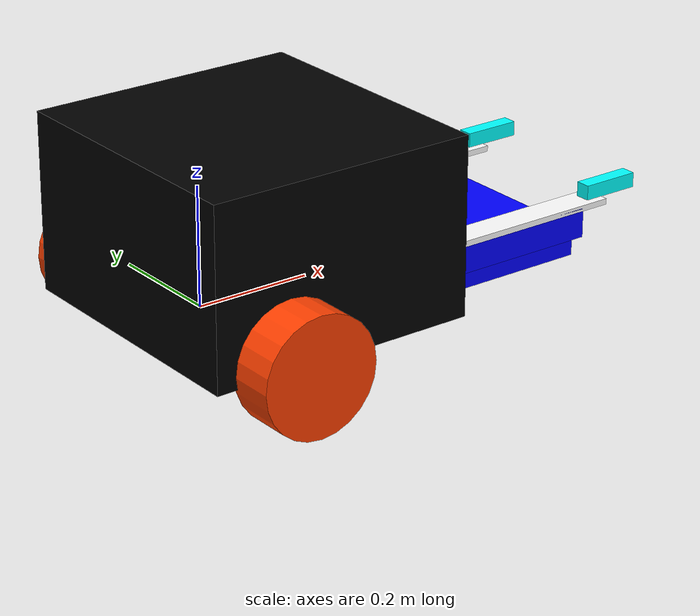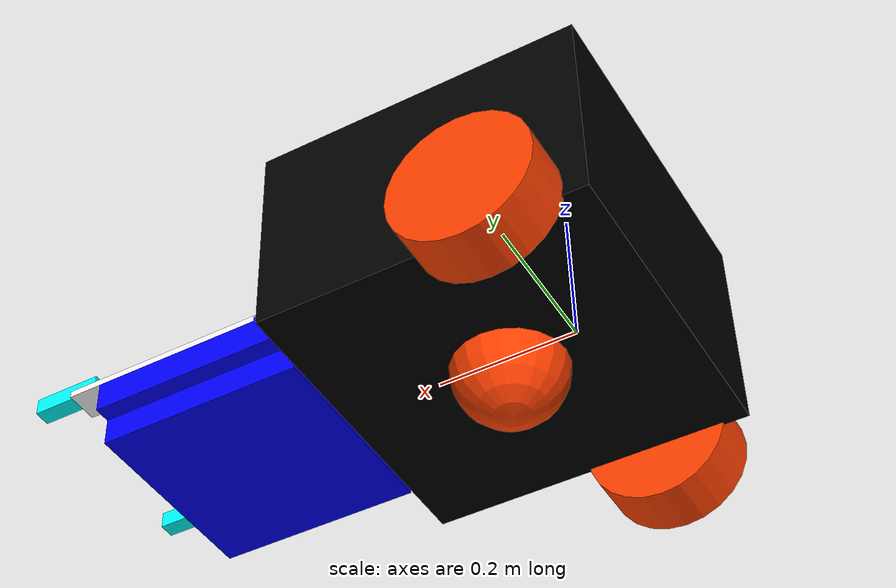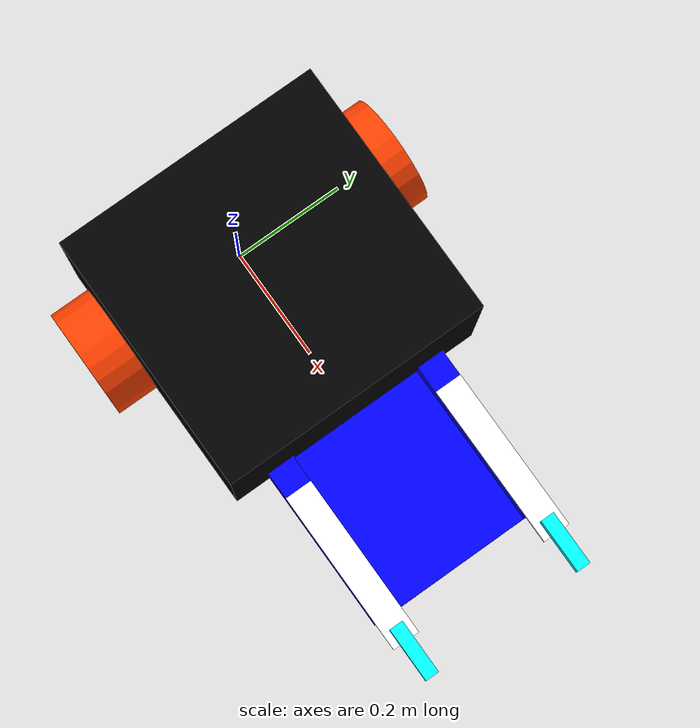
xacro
<?xml version="1.0"?>
<robot xmlns:xacro="http://www.ros.org/wiki/xacro">

    <xacro:include filename = "inertial_macros.xacro" />

    <xacro:property name="chassis_length"           value="0.464"/>
    <xacro:property name="chassis_width"            value="0.48"/>
    <xacro:property name="chassis_height"           value="0.3"/>
    <xacro:property name="chassis_mass"             value="0.700"/>

    <xacro:property name="wheel_radius"             value="0.1"/>
    <xacro:property name="wheel_thickness"          value="0.08"/>
    <xacro:property name="wheel_mass"               value="0.050"/>
    <xacro:property name="wheel_offset_x"           value="0.133"/>
    <xacro:property name="wheel_offset_y"           value="0.275"/>
    <xacro:property name="wheel_offset_z"           value="0.020"/>

    <xacro:property name="caster_wheel_radius"      value="${wheel_radius - wheel_offset_z}"/>
    <xacro:property name="caster_wheel_mass"        value="0.010"/>
    <xacro:property name="caster_wheel_offset_x"    value="0.230"/>
    <xacro:property name="caster_wheel_offset_z"    value="${wheel_offset_z - wheel_radius + caster_wheel_radius}"/>

    <!-- Colors -->
    <material name="white">
        <color rgba= "1 1 1 1"/>
    </material>

    <material name="black">
        <color rgba= "0 0 0 1"/>
    </material>

    <material name= "orange">
        <color rgba= "1 0.25 0 1"/>
    </material>

    <material name="cyan">
        <color rgba= "0 1 1 1"/>
    </material>

    <material name="indigo">
        <color rgba= "0.294 0 0.51 1"/>
    </material>

    <material name="blue">
        <color rgba= "0 0 1 1"/>
    </material>

    <!-- convention (except base_link): joint followed by link -->
    <!-- base_link -->
    <link name="base_link">
    </link>

    <!-- base_footprint -->
    <joint name="base_footprint_joint" type="fixed">
        <parent link= "base_link"/>
        <child link= "base_footprint"/>
        <origin xyz= "0 0 0" rpy= "0 0 0"/>
    </joint>

    <link name="base_footprint">
    </link>

    <!-- chasis -->
    <joint name="chasis_joint" type="fixed">
        <parent link= "base_link"/>
        <child link= "chasis"/>
        <origin xyz= "${-wheel_offset_x} 0 ${-wheel_offset_z}"/>
    </joint>

    <link name="chasis">
        <visual>
            <origin xyz= "${chassis_length/2} 0 ${chassis_height/2}" rpy= "0 0 0"/>
            <geometry>
                <box size = "${chassis_length} ${chassis_width} ${chassis_height}"/>
            </geometry>
            <material name= "black"/>
        </visual>
        <collision>
            <origin xyz= "${chassis_length/2} 0 ${chassis_height/2}" rpy= "0 0 0"/>
            <geometry>
                <box size = "${chassis_length} ${chassis_width} ${chassis_height}"/>
            </geometry>
        </collision>
        <xacro:inertial_box mass= "0.5" x="${chassis_length}" y="${chassis_width}" z="${chassis_height}">
            <origin xyz= "${chassis_length/2} 0 ${chassis_height/2}" rpy= "0 0 0"/>
        </xacro:inertial_box>
    </link>

    <gazebo reference="chasis">
        <material>Gazebo/Black</material>
    </gazebo>

    <!-- left_wheel -->
    <joint name="left_wheel_joint" type="continuous">
        <parent link= "base_link"/>
        <child link= "left_wheel"/>
        <origin xyz= "0 ${wheel_offset_y} 0" rpy = "${pi/2} 0 0"/>
        <axis xyz= "0 0 -1"/>
    </joint>

    <link name="left_wheel">
        <visual>
            <geometry>
                <cylinder radius = "${wheel_radius}" length= "${wheel_thickness}"/>
            </geometry>
            <material name= "orange"/>
        </visual>
        <collision>
            <geometry>
                <sphere radius = "${wheel_radius}" />
            </geometry>
        </collision>
        <xacro:inertial_cylinder mass = "${wheel_mass}" radius= "${wheel_radius}" length= "${wheel_thickness}">
            <origin xyz= "0 0 0" rpy= "0 0 0"/>
        </xacro:inertial_cylinder>
    </link>

    <gazebo reference="left_wheel">
        <material>Gazebo/Orange</material>
    </gazebo>

    <!-- right_wheel -->
    <joint name="right_wheel_joint" type="continuous">
        <parent link= "base_link"/>
        <child link= "right_wheel"/>
        <origin xyz= "0 ${-wheel_offset_y} 0" rpy = "${pi/2} 0 0"/>
        <axis xyz= "0 0 -1"/>
    </joint>

    <link name="right_wheel">
        <visual>
            <geometry>
                <cylinder radius = "${wheel_radius}" length= "${wheel_thickness}"/>
            </geometry>
            <material name= "orange"/>
        </visual>
        <collision>
            <geometry>
                <sphere radius = "${wheel_radius}" />
            </geometry>
        </collision>
        <xacro:inertial_cylinder mass = "${wheel_mass}" radius= "${wheel_radius}" length= "${wheel_thickness}">
            <origin xyz= "0 0 0" rpy= "0 0 0"/>
        </xacro:inertial_cylinder>
    </link>

    <gazebo reference="right_wheel">
        <material>Gazebo/Orange</material>
    </gazebo>

    <!-- caster_wheel -->
    <joint name="caster_wheel_joint" type="fixed">
        <parent link= "chasis"/>
        <child link= "caster_wheel"/>
        <origin xyz= "${caster_wheel_offset_x} 0 0"/>
    </joint>

    <link name="caster_wheel">
        <visual>
            <geometry>
                <sphere radius = "${caster_wheel_radius}"/>
            </geometry>
            <material name= "orange"/>
        </visual>
        <collision>
            <geometry>
                <sphere radius = "${caster_wheel_radius}"/>
            </geometry>
        </collision>
        <xacro:inertial_sphere mass= "${caster_wheel_mass}" radius= "${caster_wheel_radius}">
            <origin xyz= "0 0 0" rpy= "0 0 0"/>
        </xacro:inertial_sphere>
    </link>

    <gazebo reference="caster_wheel">
        <material>Gazebo/Orange</material>
        <mu1 value= "0.0001"/>
        <mu2 value= "0.0001"/>
    </gazebo>

    <!--Platform-->
    <joint name="platform_joint" type="prismatic">
        <parent link= "chasis"/>
        <child link= "platform"/>
        <origin xyz= "${chassis_length+0.15} 0 ${wheel_offset_z}" rpy= "0 0 0"/>
        <axis xyz= "0 0 1"/>
        <limit lower="0" upper="1" effort="10" velocity="0.1"/>
    </joint>
    <link name="platform">
        <visual>
            <origin xyz= "0 0 0" rpy= "0 0 0"/>
            <geometry>
                <box size = "0.3 0.3 0.05"/>
            </geometry>
            <material name= "blue"/>
        </visual>
        <collision>
            <origin xyz= "0 0 0" rpy= "0 0 0"/>
            <geometry>
                <box size = "0.3 0.3 0.05"/>
            </geometry>
        </collision>
        <xacro:inertial_box mass= "0.5" x="0.1" y="0.1" z="0.1">
            <origin xyz= "0 0 0" rpy= "0 0 0"/>
        </xacro:inertial_box>
    </link>

    <!--Extender Left Arm-->
    <joint name="extender_left_arm_joint" type="fixed">
        <parent link= "platform"/>
        <child link= "extender_left_arm"/>
        <origin xyz= "0 0.15 ${wheel_offset_z+0.02}" rpy= "0 0 0"/>
    </joint>
    <link name="extender_left_arm">
        <visual>
            <origin xyz= "0 0 0" rpy= "0 0 0"/>
            <geometry>
                <box size = "0.3 0.05 0.05"/>
            </geometry>
            <material name= "blue"/>
        </visual>
        <collision>
            <origin xyz= "0 0 0" rpy= "0 0 0"/>
            <geometry>
                <box size = "0.3 0.05 0.05"/>
            </geometry>
        </collision>
        <xacro:inertial_box mass= "0.5" x="0.1" y="0.1" z="0.1">
            <origin xyz= "0 0 0" rpy= "0 0 0"/>
        </xacro:inertial_box>

    </link>

    <!--Extender Right Arm-->
    <joint name="extender_right_arm_joint" type="fixed">
        <parent link= "platform"/>
        <child link= "extender_right_arm"/>
        <origin xyz= "0 -0.15 ${wheel_offset_z+0.02}" rpy= "0 0 0"/>

    </joint>
    <link name="extender_right_arm">
        <visual>
            <origin xyz= "0 0 0" rpy= "0 0 0"/>
            <geometry>
                <box size = "0.3 0.05 0.05"/>
            </geometry>
            <material name= "blue"/>
        </visual>
        <collision>
            <origin xyz= "0 0 0" rpy= "0 0 0"/>
            <geometry>
                <box size = "0.3 0.05 0.05"/>
            </geometry>
        </collision>
        <xacro:inertial_box mass= "0.5" x="0.1" y="0.1" z="0.1">
            <origin xyz= "0 0 0" rpy= "0 0 0"/>
        </xacro:inertial_box>
    </link>
    <!-- Slider on Extender Left Arm -->
    <joint name="slider_left_joint" type="prismatic">
        <parent link="extender_left_arm"/>
        <child link="slider_left"/>
        <origin xyz="0 0 0" rpy="0 0 0"/>
        <axis xyz="1 0 0"/>
        <limit lower="0" upper="0.235" effort="10" velocity="0.1"/>
    </joint>
    <link name="slider_left">
        <visual>
            <origin xyz="0.05 0 0.025" rpy="0 0 0"/>
            <geometry>
                <box size="0.3 0.05 0.01"/>
            </geometry>
            <material name="white"/>
        </visual>
        <collision>
            <origin xyz="0.05 0 0.025" rpy="0 0 0"/>
            <geometry>
                <box size="0.3 0.05 0.01"/>
            </geometry>
        </collision>
        <xacro:inertial_box mass="0.1" x="0.3" y="0.05" z="0.01">
            <origin xyz="0.05 0 0.025" rpy="0 0 0"/>
        </xacro:inertial_box>
    </link>

    <!-- Slider on Extender Right Arm -->
    <joint name="slider_right_joint" type="prismatic">
        <parent link="extender_right_arm"/>
        <child link="slider_right"/>
        <origin xyz="0 0 0" rpy="0 0 0"/>
        <axis xyz="1 0 0"/>
        <limit lower="0" upper="0.235" effort="10" velocity="0.1"/>
    </joint>
    <link name="slider_right">
        <visual>
            <origin xyz="0.05 0 0.025" rpy="0 0 0"/>
            <geometry>
                <box size="0.3 0.05 0.01"/>
            </geometry>
            <material name="white"/>
        </visual>
        <collision>
            <origin xyz="0.05 0 0.025" rpy="0 0 0"/>
            <geometry>
                <box size="0.3 0.05 0.01"/>
            </geometry>
        </collision>
        <xacro:inertial_box mass="0.1" x="0.3" y="0.05" z="0.01">
            <origin xyz="0.05 0 0.025" rpy="0 0 0"/>
        </xacro:inertial_box>
    </link>

    <!-- gripper_left -->
    <joint name="gripper_left_joint" type="revolute">
        <parent link="slider_left"/>
        <child link= "gripper_left"/>
        <origin xyz= "0.2 0 0" rpy= "0 0 0"/>
        <axis xyz= "0 0 1"/>
        <limit lower="-1.57" upper="0" effort="10" velocity="0.1"/>
    </joint>
    <link name="gripper_left">
        <visual>
            <origin xyz= "0.02 0 0.0423" rpy= "0 0 0"/>
            <geometry>
                <box size = "0.1 0.025 0.025"/>
            </geometry>
            <material name= "cyan"/>
        </visual>
        <collision>
            <origin xyz= "0.02 0 0.0423" rpy= "0 0 0"/>
            <geometry>
                <box size = "0.1 0.025 0.025"/>
            </geometry>
        </collision>
        <xacro:inertial_box mass= "0.5" x="0.1" y="0.1" z="0.1">
            <origin xyz= "0.02 0 0.0423" rpy= "0 0 0"/>
        </xacro:inertial_box>
    </link>

    <!-- gripper_right -->
    <joint name="gripper_right_joint" type="revolute">
        <parent link="slider_right"/>
        <child link= "gripper_right"/>
        <origin xyz= "0.2 0 0" rpy= "0 0 0"/>
        <axis xyz= "0 0 1"/>
        <limit lower="0" upper="1.57" effort="10" velocity="0.1"/>
    </joint>
    <link name="gripper_right">
        <visual>
            <origin xyz= "0.02 0 0.0423" rpy= "0 0 0"/>
            <geometry>
                <box size = "0.1 0.025 0.025"/>
            </geometry>
            <material name= "cyan"/>
        </visual>
        <collision>
            <origin xyz= "0.02 0 0.0423" rpy= "0 0 0"/>
            <geometry>
                <box size = "0.1 0.025 0.025"/>
            </geometry>
        </collision>
        <xacro:inertial_box mass= "0.5" x="0.1" y="0.1" z="0.1">
            <origin xyz= "0.02 0 0.0423" rpy= "0 0 0"/>
        </xacro:inertial_box>
    </link>

</robot>
